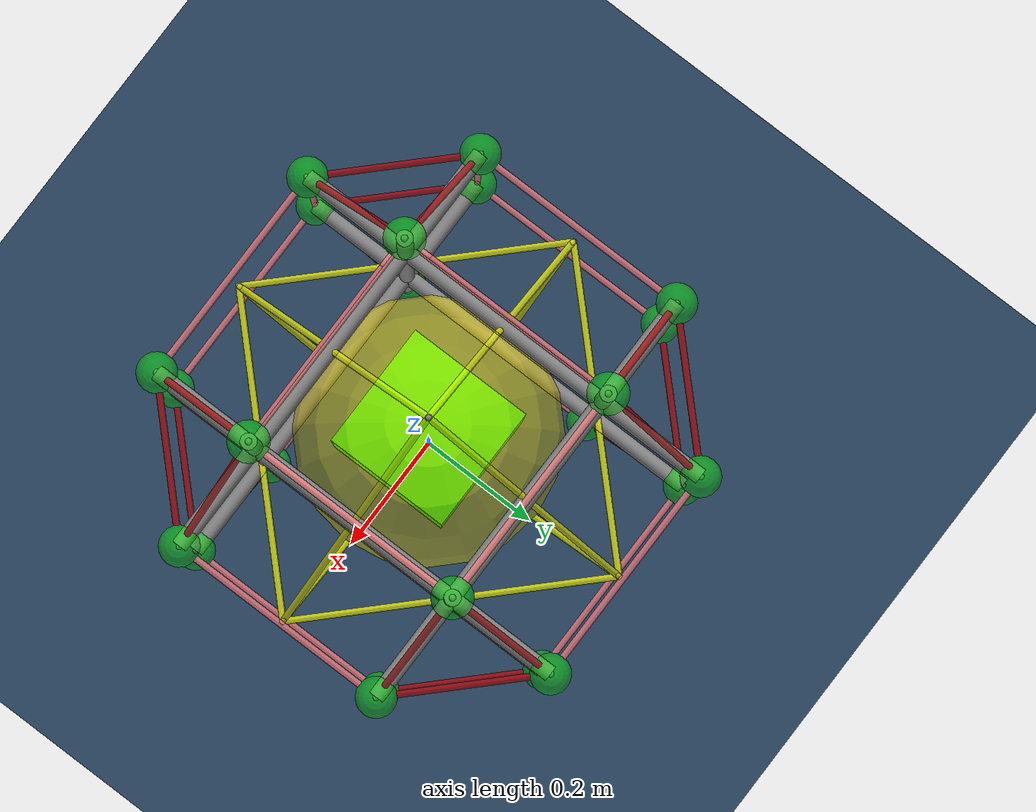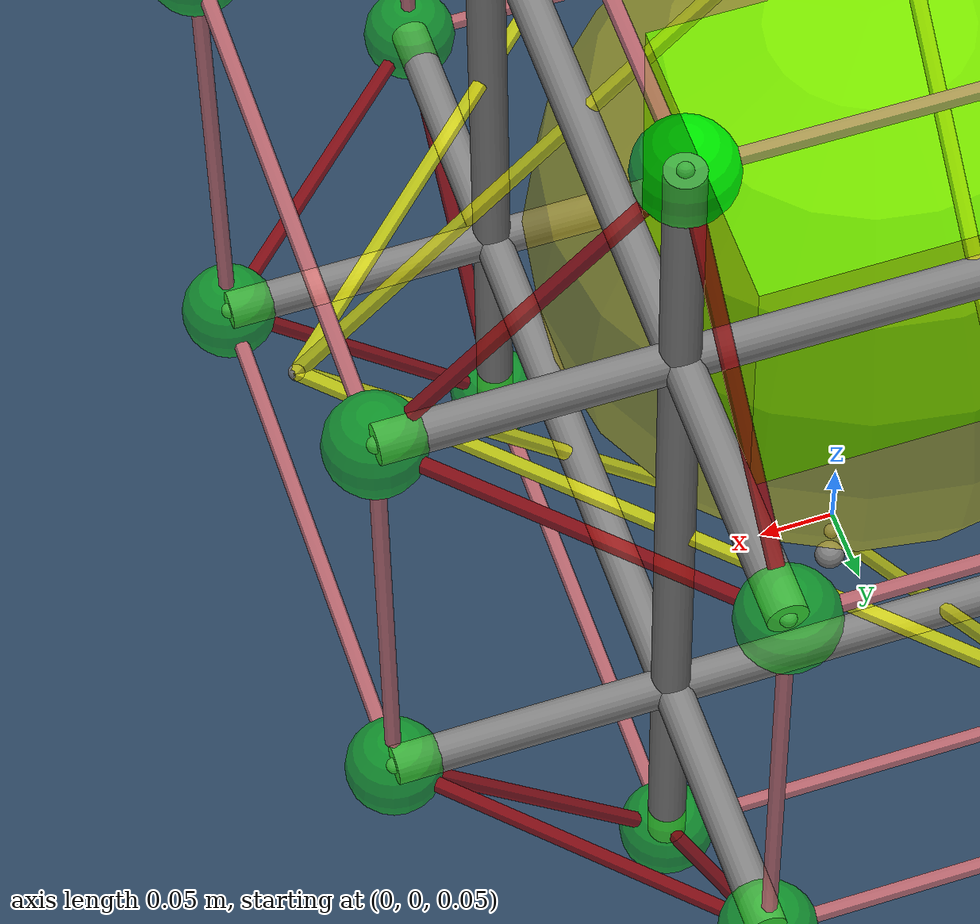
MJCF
<?xml version='1.0' encoding='utf-8'?>
<mujoco model="TT12_environment">
  <compiler autolimits="true" coordinate="local" angle="degree" inertiafromgeom="true" />
  <option timestep="1e-05" gravity="0 0 -10" integrator="Euler">
    <flag override="disable" energy="enable" />
  </option>
  <visual>
    <headlight ambient="0.59999999999999998 0.59999999999999998 0.59999999999999998" diffuse="0.29999999999999999 0.29999999999999999 0.29999999999999999" specular="0.10000000000000001 0.10000000000000001 0.10000000000000001" />
  </visual>
  <default>
    <default class="/">
      <joint type="hinge" damping="0" />
      <geom type="capsule" />
      <site type="sphere" size="0.01" />
      <tendon limited="true" range="0 10" width="0.0050000000000000001" rgba="1 0 0 1" damping="10" />
    </default>
    <default class="tt_model_0/">
      <tendon limited="true" range="0 10" width="0.0050000000000000001" rgba="1 0 0 1" damping="10" />
    </default>
    <default class="tt_model_0/rod0_1/" />
    <default class="tt_model_0/rod2_3/" />
    <default class="tt_model_0/rod4_5/" />
    <default class="tt_model_0/rod6_7/" />
    <default class="tt_model_0/rod8_9/" />
    <default class="tt_model_0/rod10_11/" />
    <default class="tt_model_0/rod12_13/" />
    <default class="tt_model_0/rod14_15/" />
    <default class="tt_model_0/rod16_17/" />
    <default class="tt_model_0/rod18_19/" />
    <default class="tt_model_0/rod20_21/" />
    <default class="tt_model_0/rod22_23/" />
    <default class="tt_model_0/middle_platform/" />
  </default>
  <asset>
    <texture name="skybox" type="skybox" builtin="gradient" rgb1="0.29999999999999999 0.5 0.69999999999999996" rgb2="0 0 0" width="512" height="3072" />
    <texture name="2d" type="2d" builtin="checker" rgb1="0.20000000000000001 0.29999999999999999 0.40000000000000002" rgb2="0.10000000000000001 0.20000000000000001 0.29999999999999999" width="300" height="300" />
    <material name="grid" class="/" texture="2d" texrepeat="5 5" reflectance="0.20000000000000001" />
  </asset>
  <worldbody>
    <geom name="floor" class="/" type="plane" condim="6" priority="1" size="0 0 0.125" material="grid" friction="0.5 0.0050000000000000001 0.0001" solref="-5773.1000000000004 -68.760000000000005" solimp="0.26900000000000002 0.070999999999999994 0.065000000000000002 0.5 2" pos="0 0 0" />
    <light name="light_-2" class="/" pos="-2 -1 3" dir="2 1 -2" />
    <light name="light_2" class="/" pos="2 -1 3" dir="-2 1 -2" />
    <site name="world_site" class="/" pos="0 0 0" />
    <site name="tt_model_0/middle_site_0_1" class="tt_model_0/" rgba="0 0 0 0" pos="0.17499999999999999 0.17499999999999999 0.38" />
    <body pos="0.17499999999999999 0.17499999999999999 0.38" name="tt_model_0/rod0_1/">
      <freejoint name="tt_model_0/rod0_1/" />
      <geom name="tt_model_0/rod0_1/geom0_1" class="tt_model_0/rod0_1/" type="cylinder" size="0.012" mass="0.022499999999999999" fromto="0 0 0.34999999999999998 0 0 -0.34999999999999998" />
      <site name="tt_model_0/rod0_1/node_0" class="tt_model_0/rod0_1/" pos="0 0 0.34999999999999998" />
      <site name="tt_model_0/rod0_1/node_1" class="tt_model_0/rod0_1/" pos="0 0 -0.34999999999999998" />
      <site name="tt_model_0/rod0_1/node_24" class="tt_model_0/rod0_1/" pos="0 0 0" />
      <geom name="tt_model_0/rod0_1/geom_edge_0" class="tt_model_0/rod0_1/" type="sphere" condim="6" size="0.029999999999999999" rgba="0 0.90000000000000002 0 0.5" mass="0.011299999999999999" pos="0 0 0.34999999999999998" />
      <geom name="tt_model_0/rod0_1/geom_edge_1" class="tt_model_0/rod0_1/" type="sphere" condim="6" size="0.029999999999999999" rgba="0 0.90000000000000002 0 0.5" mass="0.011299999999999999" pos="0 0 -0.34999999999999998" />
    </body>
    <site name="tt_model_0/middle_site_2_3" class="tt_model_0/" rgba="0 0 0 0" pos="-0.17499999999999999 0.17499999999999999 0.38" />
    <body pos="-0.17499999999999999 0.17499999999999999 0.38" name="tt_model_0/rod2_3/">
      <freejoint name="tt_model_0/rod2_3/" />
      <geom name="tt_model_0/rod2_3/geom2_3" class="tt_model_0/rod2_3/" type="cylinder" size="0.012" mass="0.022499999999999999" fromto="0 0 0.34999999999999998 0 0 -0.34999999999999998" />
      <site name="tt_model_0/rod2_3/node_2" class="tt_model_0/rod2_3/" pos="0 0 0.34999999999999998" />
      <site name="tt_model_0/rod2_3/node_3" class="tt_model_0/rod2_3/" pos="0 0 -0.34999999999999998" />
      <site name="tt_model_0/rod2_3/node_25" class="tt_model_0/rod2_3/" pos="0 0 0" />
      <geom name="tt_model_0/rod2_3/geom_edge_2" class="tt_model_0/rod2_3/" type="sphere" condim="6" size="0.029999999999999999" rgba="0 0.90000000000000002 0 0.5" mass="0.011299999999999999" pos="0 0 0.34999999999999998" />
      <geom name="tt_model_0/rod2_3/geom_edge_3" class="tt_model_0/rod2_3/" type="sphere" condim="6" size="0.029999999999999999" rgba="0 0.90000000000000002 0 0.5" mass="0.011299999999999999" pos="0 0 -0.34999999999999998" />
    </body>
    <site name="tt_model_0/middle_site_4_5" class="tt_model_0/" rgba="0 0 0 0" pos="-0.17499999999999999 -0.17499999999999999 0.38" />
    <body pos="-0.17499999999999999 -0.17499999999999999 0.38" name="tt_model_0/rod4_5/">
      <freejoint name="tt_model_0/rod4_5/" />
      <geom name="tt_model_0/rod4_5/geom4_5" class="tt_model_0/rod4_5/" type="cylinder" size="0.012" mass="0.022499999999999999" fromto="0 0 0.34999999999999998 0 0 -0.34999999999999998" />
      <site name="tt_model_0/rod4_5/node_4" class="tt_model_0/rod4_5/" pos="0 0 0.34999999999999998" />
      <site name="tt_model_0/rod4_5/node_5" class="tt_model_0/rod4_5/" pos="0 0 -0.34999999999999998" />
      <site name="tt_model_0/rod4_5/node_26" class="tt_model_0/rod4_5/" pos="0 0 0" />
      <geom name="tt_model_0/rod4_5/geom_edge_4" class="tt_model_0/rod4_5/" type="sphere" condim="6" size="0.029999999999999999" rgba="0 0.90000000000000002 0 0.5" mass="0.011299999999999999" pos="0 0 0.34999999999999998" />
      <geom name="tt_model_0/rod4_5/geom_edge_5" class="tt_model_0/rod4_5/" type="sphere" condim="6" size="0.029999999999999999" rgba="0 0.90000000000000002 0 0.5" mass="0.011299999999999999" pos="0 0 -0.34999999999999998" />
    </body>
    <site name="tt_model_0/middle_site_6_7" class="tt_model_0/" rgba="0 0 0 0" pos="0.17499999999999999 -0.17499999999999999 0.38" />
    <body pos="0.17499999999999999 -0.17499999999999999 0.38" name="tt_model_0/rod6_7/">
      <freejoint name="tt_model_0/rod6_7/" />
      <geom name="tt_model_0/rod6_7/geom6_7" class="tt_model_0/rod6_7/" type="cylinder" size="0.012" mass="0.022499999999999999" fromto="0 0 0.34999999999999998 0 0 -0.34999999999999998" />
      <site name="tt_model_0/rod6_7/node_6" class="tt_model_0/rod6_7/" pos="0 0 0.34999999999999998" />
      <site name="tt_model_0/rod6_7/node_7" class="tt_model_0/rod6_7/" pos="0 0 -0.34999999999999998" />
      <site name="tt_model_0/rod6_7/node_27" class="tt_model_0/rod6_7/" pos="0 0 0" />
      <geom name="tt_model_0/rod6_7/geom_edge_6" class="tt_model_0/rod6_7/" type="sphere" condim="6" size="0.029999999999999999" rgba="0 0.90000000000000002 0 0.5" mass="0.011299999999999999" pos="0 0 0.34999999999999998" />
      <geom name="tt_model_0/rod6_7/geom_edge_7" class="tt_model_0/rod6_7/" type="sphere" condim="6" size="0.029999999999999999" rgba="0 0.90000000000000002 0 0.5" mass="0.011299999999999999" pos="0 0 -0.34999999999999998" />
    </body>
    <site name="tt_model_0/middle_site_8_9" class="tt_model_0/" rgba="0 0 0 0" pos="0.17499999999999999 0 0.55499999999999994" />
    <body pos="0.17499999999999999 0 0.55499999999999994" name="tt_model_0/rod8_9/">
      <freejoint name="tt_model_0/rod8_9/" />
      <geom name="tt_model_0/rod8_9/geom8_9" class="tt_model_0/rod8_9/" type="cylinder" size="0.012" mass="0.022499999999999999" fromto="0 0.34999999999999998 0 0 -0.34999999999999998 0" />
      <site name="tt_model_0/rod8_9/node_8" class="tt_model_0/rod8_9/" pos="0 0.34999999999999998 0" />
      <site name="tt_model_0/rod8_9/node_9" class="tt_model_0/rod8_9/" pos="0 -0.34999999999999998 0" />
      <site name="tt_model_0/rod8_9/node_28" class="tt_model_0/rod8_9/" pos="0 0 0" />
      <geom name="tt_model_0/rod8_9/geom_edge_8" class="tt_model_0/rod8_9/" type="sphere" condim="6" size="0.029999999999999999" rgba="0 0.90000000000000002 0 0.5" mass="0.011299999999999999" pos="0 0.34999999999999998 0" />
      <geom name="tt_model_0/rod8_9/geom_edge_9" class="tt_model_0/rod8_9/" type="sphere" condim="6" size="0.029999999999999999" rgba="0 0.90000000000000002 0 0.5" mass="0.011299999999999999" pos="0 -0.34999999999999998 0" />
    </body>
    <site name="tt_model_0/middle_site_10_11" class="tt_model_0/" rgba="0 0 0 0" pos="0.17499999999999999 0 0.20500000000000002" />
    <body pos="0.17499999999999999 0 0.20500000000000002" name="tt_model_0/rod10_11/">
      <freejoint name="tt_model_0/rod10_11/" />
      <geom name="tt_model_0/rod10_11/geom10_11" class="tt_model_0/rod10_11/" type="cylinder" size="0.012" mass="0.022499999999999999" fromto="0 0.34999999999999998 0 0 -0.34999999999999998 0" />
      <site name="tt_model_0/rod10_11/node_10" class="tt_model_0/rod10_11/" pos="0 0.34999999999999998 0" />
      <site name="tt_model_0/rod10_11/node_11" class="tt_model_0/rod10_11/" pos="0 -0.34999999999999998 0" />
      <site name="tt_model_0/rod10_11/node_29" class="tt_model_0/rod10_11/" pos="0 0 0" />
      <geom name="tt_model_0/rod10_11/geom_edge_10" class="tt_model_0/rod10_11/" type="sphere" condim="6" size="0.029999999999999999" rgba="0 0.90000000000000002 0 0.5" mass="0.011299999999999999" pos="0 0.34999999999999998 0" />
      <geom name="tt_model_0/rod10_11/geom_edge_11" class="tt_model_0/rod10_11/" type="sphere" condim="6" size="0.029999999999999999" rgba="0 0.90000000000000002 0 0.5" mass="0.011299999999999999" pos="0 -0.34999999999999998 0" />
    </body>
    <site name="tt_model_0/middle_site_12_13" class="tt_model_0/" rgba="0 0 0 0" pos="-0.17499999999999999 0 0.20500000000000002" />
    <body pos="-0.17499999999999999 0 0.20500000000000002" name="tt_model_0/rod12_13/">
      <freejoint name="tt_model_0/rod12_13/" />
      <geom name="tt_model_0/rod12_13/geom12_13" class="tt_model_0/rod12_13/" type="cylinder" size="0.012" mass="0.022499999999999999" fromto="0 0.34999999999999998 0 0 -0.34999999999999998 0" />
      <site name="tt_model_0/rod12_13/node_12" class="tt_model_0/rod12_13/" pos="0 0.34999999999999998 0" />
      <site name="tt_model_0/rod12_13/node_13" class="tt_model_0/rod12_13/" pos="0 -0.34999999999999998 0" />
      <site name="tt_model_0/rod12_13/node_30" class="tt_model_0/rod12_13/" pos="0 0 0" />
      <geom name="tt_model_0/rod12_13/geom_edge_12" class="tt_model_0/rod12_13/" type="sphere" condim="6" size="0.029999999999999999" rgba="0 0.90000000000000002 0 0.5" mass="0.011299999999999999" pos="0 0.34999999999999998 0" />
      <geom name="tt_model_0/rod12_13/geom_edge_13" class="tt_model_0/rod12_13/" type="sphere" condim="6" size="0.029999999999999999" rgba="0 0.90000000000000002 0 0.5" mass="0.011299999999999999" pos="0 -0.34999999999999998 0" />
    </body>
    <site name="tt_model_0/middle_site_14_15" class="tt_model_0/" rgba="0 0 0 0" pos="-0.17499999999999999 0 0.55499999999999994" />
    <body pos="-0.17499999999999999 0 0.55499999999999994" name="tt_model_0/rod14_15/">
      <freejoint name="tt_model_0/rod14_15/" />
      <geom name="tt_model_0/rod14_15/geom14_15" class="tt_model_0/rod14_15/" type="cylinder" size="0.012" mass="0.022499999999999999" fromto="0 0.34999999999999998 0 0 -0.34999999999999998 0" />
      <site name="tt_model_0/rod14_15/node_14" class="tt_model_0/rod14_15/" pos="0 0.34999999999999998 0" />
      <site name="tt_model_0/rod14_15/node_15" class="tt_model_0/rod14_15/" pos="0 -0.34999999999999998 0" />
      <site name="tt_model_0/rod14_15/node_31" class="tt_model_0/rod14_15/" pos="0 0 0" />
      <geom name="tt_model_0/rod14_15/geom_edge_14" class="tt_model_0/rod14_15/" type="sphere" condim="6" size="0.029999999999999999" rgba="0 0.90000000000000002 0 0.5" mass="0.011299999999999999" pos="0 0.34999999999999998 0" />
      <geom name="tt_model_0/rod14_15/geom_edge_15" class="tt_model_0/rod14_15/" type="sphere" condim="6" size="0.029999999999999999" rgba="0 0.90000000000000002 0 0.5" mass="0.011299999999999999" pos="0 -0.34999999999999998 0" />
    </body>
    <site name="tt_model_0/middle_site_16_17" class="tt_model_0/" rgba="0 0 0 0" pos="0 0.17499999999999999 0.55499999999999994" />
    <body pos="0 0.17499999999999999 0.55499999999999994" name="tt_model_0/rod16_17/">
      <freejoint name="tt_model_0/rod16_17/" />
      <geom name="tt_model_0/rod16_17/geom16_17" class="tt_model_0/rod16_17/" type="cylinder" size="0.012" mass="0.022499999999999999" fromto="0.34999999999999998 0 0 -0.34999999999999998 0 0" />
      <site name="tt_model_0/rod16_17/node_16" class="tt_model_0/rod16_17/" pos="0.34999999999999998 0 0" />
      <site name="tt_model_0/rod16_17/node_17" class="tt_model_0/rod16_17/" pos="-0.34999999999999998 0 0" />
      <site name="tt_model_0/rod16_17/node_32" class="tt_model_0/rod16_17/" pos="0 0 0" />
      <geom name="tt_model_0/rod16_17/geom_edge_16" class="tt_model_0/rod16_17/" type="sphere" condim="6" size="0.029999999999999999" rgba="0 0.90000000000000002 0 0.5" mass="0.011299999999999999" pos="0.34999999999999998 0 0" />
      <geom name="tt_model_0/rod16_17/geom_edge_17" class="tt_model_0/rod16_17/" type="sphere" condim="6" size="0.029999999999999999" rgba="0 0.90000000000000002 0 0.5" mass="0.011299999999999999" pos="-0.34999999999999998 0 0" />
    </body>
    <site name="tt_model_0/middle_site_18_19" class="tt_model_0/" rgba="0 0 0 0" pos="0 -0.17499999999999999 0.55499999999999994" />
    <body pos="0 -0.17499999999999999 0.55499999999999994" name="tt_model_0/rod18_19/">
      <freejoint name="tt_model_0/rod18_19/" />
      <geom name="tt_model_0/rod18_19/geom18_19" class="tt_model_0/rod18_19/" type="cylinder" size="0.012" mass="0.022499999999999999" fromto="0.34999999999999998 0 0 -0.34999999999999998 0 0" />
      <site name="tt_model_0/rod18_19/node_18" class="tt_model_0/rod18_19/" pos="0.34999999999999998 0 0" />
      <site name="tt_model_0/rod18_19/node_19" class="tt_model_0/rod18_19/" pos="-0.34999999999999998 0 0" />
      <site name="tt_model_0/rod18_19/node_33" class="tt_model_0/rod18_19/" pos="0 0 0" />
      <geom name="tt_model_0/rod18_19/geom_edge_18" class="tt_model_0/rod18_19/" type="sphere" condim="6" size="0.029999999999999999" rgba="0 0.90000000000000002 0 0.5" mass="0.011299999999999999" pos="0.34999999999999998 0 0" />
      <geom name="tt_model_0/rod18_19/geom_edge_19" class="tt_model_0/rod18_19/" type="sphere" condim="6" size="0.029999999999999999" rgba="0 0.90000000000000002 0 0.5" mass="0.011299999999999999" pos="-0.34999999999999998 0 0" />
    </body>
    <site name="tt_model_0/middle_site_20_21" class="tt_model_0/" rgba="0 0 0 0" pos="0 -0.17499999999999999 0.20500000000000002" />
    <body pos="0 -0.17499999999999999 0.20500000000000002" name="tt_model_0/rod20_21/">
      <freejoint name="tt_model_0/rod20_21/" />
      <geom name="tt_model_0/rod20_21/geom20_21" class="tt_model_0/rod20_21/" type="cylinder" size="0.012" mass="0.022499999999999999" fromto="0.34999999999999998 0 0 -0.34999999999999998 0 0" />
      <site name="tt_model_0/rod20_21/node_20" class="tt_model_0/rod20_21/" pos="0.34999999999999998 0 0" />
      <site name="tt_model_0/rod20_21/node_21" class="tt_model_0/rod20_21/" pos="-0.34999999999999998 0 0" />
      <site name="tt_model_0/rod20_21/node_34" class="tt_model_0/rod20_21/" pos="0 0 0" />
      <geom name="tt_model_0/rod20_21/geom_edge_20" class="tt_model_0/rod20_21/" type="sphere" condim="6" size="0.029999999999999999" rgba="0 0.90000000000000002 0 0.5" mass="0.011299999999999999" pos="0.34999999999999998 0 0" />
      <geom name="tt_model_0/rod20_21/geom_edge_21" class="tt_model_0/rod20_21/" type="sphere" condim="6" size="0.029999999999999999" rgba="0 0.90000000000000002 0 0.5" mass="0.011299999999999999" pos="-0.34999999999999998 0 0" />
    </body>
    <site name="tt_model_0/middle_site_22_23" class="tt_model_0/" rgba="0 0 0 0" pos="0 0.17499999999999999 0.20500000000000002" />
    <body pos="0 0.17499999999999999 0.20500000000000002" name="tt_model_0/rod22_23/">
      <freejoint name="tt_model_0/rod22_23/" />
      <geom name="tt_model_0/rod22_23/geom22_23" class="tt_model_0/rod22_23/" type="cylinder" size="0.012" mass="0.022499999999999999" fromto="0.34999999999999998 0 0 -0.34999999999999998 0 0" />
      <site name="tt_model_0/rod22_23/node_22" class="tt_model_0/rod22_23/" pos="0.34999999999999998 0 0" />
      <site name="tt_model_0/rod22_23/node_23" class="tt_model_0/rod22_23/" pos="-0.34999999999999998 0 0" />
      <site name="tt_model_0/rod22_23/node_35" class="tt_model_0/rod22_23/" pos="0 0 0" />
      <geom name="tt_model_0/rod22_23/geom_edge_22" class="tt_model_0/rod22_23/" type="sphere" condim="6" size="0.029999999999999999" rgba="0 0.90000000000000002 0 0.5" mass="0.011299999999999999" pos="0.34999999999999998 0 0" />
      <geom name="tt_model_0/rod22_23/geom_edge_23" class="tt_model_0/rod22_23/" type="sphere" condim="6" size="0.029999999999999999" rgba="0 0.90000000000000002 0 0.5" mass="0.011299999999999999" pos="-0.34999999999999998 0 0" />
    </body>
    <site name="tt_model_0/middle_element_site" class="tt_model_0/" rgba="0 0 0 0" pos="0 0 0.38" />
    <body pos="0 0 0.38" name="tt_model_0/middle_platform/">
      <freejoint name="tt_model_0/middle_platform/" />
      <inertial pos="0 0 0" mass="0.69999999999999996" diaginertia="0.02 0.02 0.02" />
      <site name="tt_model_0/middle_platform/node_39" class="tt_model_0/middle_platform/" pos="0 0.34999999999999998 0" />
      <site name="tt_model_0/middle_platform/node_40" class="tt_model_0/middle_platform/" pos="0 -0.34999999999999998 0" />
      <site name="tt_model_0/middle_platform/node_37" class="tt_model_0/middle_platform/" pos="0.34999999999999998 0 0" />
      <site name="tt_model_0/middle_platform/node_41" class="tt_model_0/middle_platform/" pos="0 0 0.34999999999999998" />
      <site name="tt_model_0/middle_platform/node_38" class="tt_model_0/middle_platform/" pos="-0.34999999999999998 0 0" />
      <site name="tt_model_0/middle_platform/node_42" class="tt_model_0/middle_platform/" pos="0 0 -0.34999999999999998" />
      <site name="tt_model_0/middle_platform/outside_site" class="tt_model_0/middle_platform/" rgba="1 0.90000000000000002 0 0.5" size="0.20000000000000001" pos="0 0 0" />
      <body name="tt_model_0/middle_platform/inside_ball" pos="0 0 0">
        <inertial pos="0 0 0" mass="6.5999999999999996" diaginertia="0.12 0.12 0.12" />
        <joint name="tt_model_0/middle_platform/x_control" class="tt_model_0/middle_platform/" type="hinge" axis="1 0 0" />
        <joint name="tt_model_0/middle_platform/y_control" class="tt_model_0/middle_platform/" type="hinge" axis="0 1 0" />
        <joint name="tt_model_0/middle_platform/z_control" class="tt_model_0/middle_platform/" type="hinge" axis="0 0 1" />
        <site name="tt_model_0/middle_platform/inside_site" class="tt_model_0/middle_platform/" type="box" rgba="0 0.90000000000000002 0 1" size="0.10000000000000001 0.10000000000000001 0.10000000000000001" pos="0 0 0" />
      </body>
    </body>
  </worldbody>
  <contact>
    <exclude name="tt_model_0/exclude_rod0_1_rod2_3" body1="tt_model_0/rod0_1/" body2="tt_model_0/rod2_3/" />
    <exclude name="tt_model_0/exclude_rod0_1_rod4_5" body1="tt_model_0/rod0_1/" body2="tt_model_0/rod4_5/" />
    <exclude name="tt_model_0/exclude_rod0_1_rod6_7" body1="tt_model_0/rod0_1/" body2="tt_model_0/rod6_7/" />
    <exclude name="tt_model_0/exclude_rod0_1_rod8_9" body1="tt_model_0/rod0_1/" body2="tt_model_0/rod8_9/" />
    <exclude name="tt_model_0/exclude_rod0_1_rod10_11" body1="tt_model_0/rod0_1/" body2="tt_model_0/rod10_11/" />
    <exclude name="tt_model_0/exclude_rod0_1_rod12_13" body1="tt_model_0/rod0_1/" body2="tt_model_0/rod12_13/" />
    <exclude name="tt_model_0/exclude_rod0_1_rod14_15" body1="tt_model_0/rod0_1/" body2="tt_model_0/rod14_15/" />
    <exclude name="tt_model_0/exclude_rod0_1_rod16_17" body1="tt_model_0/rod0_1/" body2="tt_model_0/rod16_17/" />
    <exclude name="tt_model_0/exclude_rod0_1_rod18_19" body1="tt_model_0/rod0_1/" body2="tt_model_0/rod18_19/" />
    <exclude name="tt_model_0/exclude_rod0_1_rod20_21" body1="tt_model_0/rod0_1/" body2="tt_model_0/rod20_21/" />
    <exclude name="tt_model_0/exclude_rod0_1_rod22_23" body1="tt_model_0/rod0_1/" body2="tt_model_0/rod22_23/" />
    <exclude name="tt_model_0/exclude_rod2_3_rod4_5" body1="tt_model_0/rod2_3/" body2="tt_model_0/rod4_5/" />
    <exclude name="tt_model_0/exclude_rod2_3_rod6_7" body1="tt_model_0/rod2_3/" body2="tt_model_0/rod6_7/" />
    <exclude name="tt_model_0/exclude_rod2_3_rod8_9" body1="tt_model_0/rod2_3/" body2="tt_model_0/rod8_9/" />
    <exclude name="tt_model_0/exclude_rod2_3_rod10_11" body1="tt_model_0/rod2_3/" body2="tt_model_0/rod10_11/" />
    <exclude name="tt_model_0/exclude_rod2_3_rod12_13" body1="tt_model_0/rod2_3/" body2="tt_model_0/rod12_13/" />
    <exclude name="tt_model_0/exclude_rod2_3_rod14_15" body1="tt_model_0/rod2_3/" body2="tt_model_0/rod14_15/" />
    <exclude name="tt_model_0/exclude_rod2_3_rod16_17" body1="tt_model_0/rod2_3/" body2="tt_model_0/rod16_17/" />
    <exclude name="tt_model_0/exclude_rod2_3_rod18_19" body1="tt_model_0/rod2_3/" body2="tt_model_0/rod18_19/" />
    <exclude name="tt_model_0/exclude_rod2_3_rod20_21" body1="tt_model_0/rod2_3/" body2="tt_model_0/rod20_21/" />
    <exclude name="tt_model_0/exclude_rod2_3_rod22_23" body1="tt_model_0/rod2_3/" body2="tt_model_0/rod22_23/" />
    <exclude name="tt_model_0/exclude_rod4_5_rod6_7" body1="tt_model_0/rod4_5/" body2="tt_model_0/rod6_7/" />
    <exclude name="tt_model_0/exclude_rod4_5_rod8_9" body1="tt_model_0/rod4_5/" body2="tt_model_0/rod8_9/" />
    <exclude name="tt_model_0/exclude_rod4_5_rod10_11" body1="tt_model_0/rod4_5/" body2="tt_model_0/rod10_11/" />
    <exclude name="tt_model_0/exclude_rod4_5_rod12_13" body1="tt_model_0/rod4_5/" body2="tt_model_0/rod12_13/" />
    <exclude name="tt_model_0/exclude_rod4_5_rod14_15" body1="tt_model_0/rod4_5/" body2="tt_model_0/rod14_15/" />
    <exclude name="tt_model_0/exclude_rod4_5_rod16_17" body1="tt_model_0/rod4_5/" body2="tt_model_0/rod16_17/" />
    <exclude name="tt_model_0/exclude_rod4_5_rod18_19" body1="tt_model_0/rod4_5/" body2="tt_model_0/rod18_19/" />
    <exclude name="tt_model_0/exclude_rod4_5_rod20_21" body1="tt_model_0/rod4_5/" body2="tt_model_0/rod20_21/" />
    <exclude name="tt_model_0/exclude_rod4_5_rod22_23" body1="tt_model_0/rod4_5/" body2="tt_model_0/rod22_23/" />
    <exclude name="tt_model_0/exclude_rod6_7_rod8_9" body1="tt_model_0/rod6_7/" body2="tt_model_0/rod8_9/" />
    <exclude name="tt_model_0/exclude_rod6_7_rod10_11" body1="tt_model_0/rod6_7/" body2="tt_model_0/rod10_11/" />
    <exclude name="tt_model_0/exclude_rod6_7_rod12_13" body1="tt_model_0/rod6_7/" body2="tt_model_0/rod12_13/" />
    <exclude name="tt_model_0/exclude_rod6_7_rod14_15" body1="tt_model_0/rod6_7/" body2="tt_model_0/rod14_15/" />
    <exclude name="tt_model_0/exclude_rod6_7_rod16_17" body1="tt_model_0/rod6_7/" body2="tt_model_0/rod16_17/" />
    <exclude name="tt_model_0/exclude_rod6_7_rod18_19" body1="tt_model_0/rod6_7/" body2="tt_model_0/rod18_19/" />
    <exclude name="tt_model_0/exclude_rod6_7_rod20_21" body1="tt_model_0/rod6_7/" body2="tt_model_0/rod20_21/" />
    <exclude name="tt_model_0/exclude_rod6_7_rod22_23" body1="tt_model_0/rod6_7/" body2="tt_model_0/rod22_23/" />
    <exclude name="tt_model_0/exclude_rod8_9_rod10_11" body1="tt_model_0/rod8_9/" body2="tt_model_0/rod10_11/" />
    <exclude name="tt_model_0/exclude_rod8_9_rod12_13" body1="tt_model_0/rod8_9/" body2="tt_model_0/rod12_13/" />
    <exclude name="tt_model_0/exclude_rod8_9_rod14_15" body1="tt_model_0/rod8_9/" body2="tt_model_0/rod14_15/" />
    <exclude name="tt_model_0/exclude_rod8_9_rod16_17" body1="tt_model_0/rod8_9/" body2="tt_model_0/rod16_17/" />
    <exclude name="tt_model_0/exclude_rod8_9_rod18_19" body1="tt_model_0/rod8_9/" body2="tt_model_0/rod18_19/" />
    <exclude name="tt_model_0/exclude_rod8_9_rod20_21" body1="tt_model_0/rod8_9/" body2="tt_model_0/rod20_21/" />
    <exclude name="tt_model_0/exclude_rod8_9_rod22_23" body1="tt_model_0/rod8_9/" body2="tt_model_0/rod22_23/" />
    <exclude name="tt_model_0/exclude_rod10_11_rod12_13" body1="tt_model_0/rod10_11/" body2="tt_model_0/rod12_13/" />
    <exclude name="tt_model_0/exclude_rod10_11_rod14_15" body1="tt_model_0/rod10_11/" body2="tt_model_0/rod14_15/" />
    <exclude name="tt_model_0/exclude_rod10_11_rod16_17" body1="tt_model_0/rod10_11/" body2="tt_model_0/rod16_17/" />
    <exclude name="tt_model_0/exclude_rod10_11_rod18_19" body1="tt_model_0/rod10_11/" body2="tt_model_0/rod18_19/" />
    <exclude name="tt_model_0/exclude_rod10_11_rod20_21" body1="tt_model_0/rod10_11/" body2="tt_model_0/rod20_21/" />
    <exclude name="tt_model_0/exclude_rod10_11_rod22_23" body1="tt_model_0/rod10_11/" body2="tt_model_0/rod22_23/" />
    <exclude name="tt_model_0/exclude_rod12_13_rod14_15" body1="tt_model_0/rod12_13/" body2="tt_model_0/rod14_15/" />
    <exclude name="tt_model_0/exclude_rod12_13_rod16_17" body1="tt_model_0/rod12_13/" body2="tt_model_0/rod16_17/" />
    <exclude name="tt_model_0/exclude_rod12_13_rod18_19" body1="tt_model_0/rod12_13/" body2="tt_model_0/rod18_19/" />
    <exclude name="tt_model_0/exclude_rod12_13_rod20_21" body1="tt_model_0/rod12_13/" body2="tt_model_0/rod20_21/" />
    <exclude name="tt_model_0/exclude_rod12_13_rod22_23" body1="tt_model_0/rod12_13/" body2="tt_model_0/rod22_23/" />
    <exclude name="tt_model_0/exclude_rod14_15_rod16_17" body1="tt_model_0/rod14_15/" body2="tt_model_0/rod16_17/" />
    <exclude name="tt_model_0/exclude_rod14_15_rod18_19" body1="tt_model_0/rod14_15/" body2="tt_model_0/rod18_19/" />
    <exclude name="tt_model_0/exclude_rod14_15_rod20_21" body1="tt_model_0/rod14_15/" body2="tt_model_0/rod20_21/" />
    <exclude name="tt_model_0/exclude_rod14_15_rod22_23" body1="tt_model_0/rod14_15/" body2="tt_model_0/rod22_23/" />
    <exclude name="tt_model_0/exclude_rod16_17_rod18_19" body1="tt_model_0/rod16_17/" body2="tt_model_0/rod18_19/" />
    <exclude name="tt_model_0/exclude_rod16_17_rod20_21" body1="tt_model_0/rod16_17/" body2="tt_model_0/rod20_21/" />
    <exclude name="tt_model_0/exclude_rod16_17_rod22_23" body1="tt_model_0/rod16_17/" body2="tt_model_0/rod22_23/" />
    <exclude name="tt_model_0/exclude_rod18_19_rod20_21" body1="tt_model_0/rod18_19/" body2="tt_model_0/rod20_21/" />
    <exclude name="tt_model_0/exclude_rod18_19_rod22_23" body1="tt_model_0/rod18_19/" body2="tt_model_0/rod22_23/" />
    <exclude name="tt_model_0/exclude_rod20_21_rod22_23" body1="tt_model_0/rod20_21/" body2="tt_model_0/rod22_23/" />
  </contact>
  <tendon>
    <spatial name="tt_model_0/td0_2" class="tt_model_0/" rgba="1 0.5 0.5 0.69999999999999996" springlength="0.22029831387808038" stiffness="771">
      <site site="tt_model_0/rod0_1/node_0" />
      <site site="tt_model_0/rod2_3/node_2" />
    </spatial>
    <spatial name="tt_model_0/td2_4" class="tt_model_0/" rgba="1 0.5 0.5 0.69999999999999996" springlength="0.22029831387808038" stiffness="771">
      <site site="tt_model_0/rod2_3/node_2" />
      <site site="tt_model_0/rod4_5/node_4" />
    </spatial>
    <spatial name="tt_model_0/td4_6" class="tt_model_0/" rgba="1 0.5 0.5 0.69999999999999996" springlength="0.22029831387808038" stiffness="771">
      <site site="tt_model_0/rod4_5/node_4" />
      <site site="tt_model_0/rod6_7/node_6" />
    </spatial>
    <spatial name="tt_model_0/td6_0" class="tt_model_0/" rgba="1 0.5 0.5 0.69999999999999996" springlength="0.22029831387808038" stiffness="771">
      <site site="tt_model_0/rod6_7/node_6" />
      <site site="tt_model_0/rod0_1/node_0" />
    </spatial>
    <spatial name="tt_model_0/td1_3" class="tt_model_0/" rgba="1 0.5 0.5 0.69999999999999996" springlength="0.22029831387808038" stiffness="771">
      <site site="tt_model_0/rod0_1/node_1" />
      <site site="tt_model_0/rod2_3/node_3" />
    </spatial>
    <spatial name="tt_model_0/td3_5" class="tt_model_0/" rgba="1 0.5 0.5 0.69999999999999996" springlength="0.22029831387808038" stiffness="771">
      <site site="tt_model_0/rod2_3/node_3" />
      <site site="tt_model_0/rod4_5/node_5" />
    </spatial>
    <spatial name="tt_model_0/td5_7" class="tt_model_0/" rgba="1 0.5 0.5 0.69999999999999996" springlength="0.22029831387808038" stiffness="771">
      <site site="tt_model_0/rod4_5/node_5" />
      <site site="tt_model_0/rod6_7/node_7" />
    </spatial>
    <spatial name="tt_model_0/td7_1" class="tt_model_0/" rgba="1 0.5 0.5 0.69999999999999996" springlength="0.22029831387808038" stiffness="771">
      <site site="tt_model_0/rod6_7/node_7" />
      <site site="tt_model_0/rod0_1/node_1" />
    </spatial>
    <spatial name="tt_model_0/td8_10" class="tt_model_0/" rgba="1 0.5 0.5 0.69999999999999996" springlength="0.22029831387808038" stiffness="771">
      <site site="tt_model_0/rod8_9/node_8" />
      <site site="tt_model_0/rod10_11/node_10" />
    </spatial>
    <spatial name="tt_model_0/td10_12" class="tt_model_0/" rgba="1 0.5 0.5 0.69999999999999996" springlength="0.22029831387808038" stiffness="771">
      <site site="tt_model_0/rod10_11/node_10" />
      <site site="tt_model_0/rod12_13/node_12" />
    </spatial>
    <spatial name="tt_model_0/td12_14" class="tt_model_0/" rgba="1 0.5 0.5 0.69999999999999996" springlength="0.22029831387808038" stiffness="771">
      <site site="tt_model_0/rod12_13/node_12" />
      <site site="tt_model_0/rod14_15/node_14" />
    </spatial>
    <spatial name="tt_model_0/td14_8" class="tt_model_0/" rgba="1 0.5 0.5 0.69999999999999996" springlength="0.22029831387808038" stiffness="771">
      <site site="tt_model_0/rod14_15/node_14" />
      <site site="tt_model_0/rod8_9/node_8" />
    </spatial>
    <spatial name="tt_model_0/td9_11" class="tt_model_0/" rgba="1 0.5 0.5 0.69999999999999996" springlength="0.22029831387808038" stiffness="771">
      <site site="tt_model_0/rod8_9/node_9" />
      <site site="tt_model_0/rod10_11/node_11" />
    </spatial>
    <spatial name="tt_model_0/td11_13" class="tt_model_0/" rgba="1 0.5 0.5 0.69999999999999996" springlength="0.22029831387808038" stiffness="771">
      <site site="tt_model_0/rod10_11/node_11" />
      <site site="tt_model_0/rod12_13/node_13" />
    </spatial>
    <spatial name="tt_model_0/td13_15" class="tt_model_0/" rgba="1 0.5 0.5 0.69999999999999996" springlength="0.22029831387808038" stiffness="771">
      <site site="tt_model_0/rod12_13/node_13" />
      <site site="tt_model_0/rod14_15/node_15" />
    </spatial>
    <spatial name="tt_model_0/td15_9" class="tt_model_0/" rgba="1 0.5 0.5 0.69999999999999996" springlength="0.22029831387808038" stiffness="771">
      <site site="tt_model_0/rod14_15/node_15" />
      <site site="tt_model_0/rod8_9/node_9" />
    </spatial>
    <spatial name="tt_model_0/td16_18" class="tt_model_0/" rgba="1 0.5 0.5 0.69999999999999996" springlength="0.22029831387808038" stiffness="771">
      <site site="tt_model_0/rod16_17/node_16" />
      <site site="tt_model_0/rod18_19/node_18" />
    </spatial>
    <spatial name="tt_model_0/td18_20" class="tt_model_0/" rgba="1 0.5 0.5 0.69999999999999996" springlength="0.22029831387808038" stiffness="771">
      <site site="tt_model_0/rod18_19/node_18" />
      <site site="tt_model_0/rod20_21/node_20" />
    </spatial>
    <spatial name="tt_model_0/td20_22" class="tt_model_0/" rgba="1 0.5 0.5 0.69999999999999996" springlength="0.22029831387808038" stiffness="771">
      <site site="tt_model_0/rod20_21/node_20" />
      <site site="tt_model_0/rod22_23/node_22" />
    </spatial>
    <spatial name="tt_model_0/td22_16" class="tt_model_0/" rgba="1 0.5 0.5 0.69999999999999996" springlength="0.22029831387808038" stiffness="771">
      <site site="tt_model_0/rod22_23/node_22" />
      <site site="tt_model_0/rod16_17/node_16" />
    </spatial>
    <spatial name="tt_model_0/td17_19" class="tt_model_0/" rgba="1 0.5 0.5 0.69999999999999996" springlength="0.22029831387808038" stiffness="771">
      <site site="tt_model_0/rod16_17/node_17" />
      <site site="tt_model_0/rod18_19/node_19" />
    </spatial>
    <spatial name="tt_model_0/td19_21" class="tt_model_0/" rgba="1 0.5 0.5 0.69999999999999996" springlength="0.22029831387808038" stiffness="771">
      <site site="tt_model_0/rod18_19/node_19" />
      <site site="tt_model_0/rod20_21/node_21" />
    </spatial>
    <spatial name="tt_model_0/td21_23" class="tt_model_0/" rgba="1 0.5 0.5 0.69999999999999996" springlength="0.22029831387808038" stiffness="771">
      <site site="tt_model_0/rod20_21/node_21" />
      <site site="tt_model_0/rod22_23/node_23" />
    </spatial>
    <spatial name="tt_model_0/td23_17" class="tt_model_0/" rgba="1 0.5 0.5 0.69999999999999996" springlength="0.22029831387808038" stiffness="771">
      <site site="tt_model_0/rod22_23/node_23" />
      <site site="tt_model_0/rod16_17/node_17" />
    </spatial>
    <spatial name="tt_model_0/td0_16" class="tt_model_0/" rgba="0.69999999999999996 0 0 0.69999999999999996" springlength="0.10248737341529165" stiffness="2000">
      <site site="tt_model_0/rod0_1/node_0" />
      <site site="tt_model_0/rod16_17/node_16" />
    </spatial>
    <spatial name="tt_model_0/td2_17" class="tt_model_0/" rgba="0.69999999999999996 0 0 0.69999999999999996" springlength="0.10248737341529165" stiffness="2000">
      <site site="tt_model_0/rod2_3/node_2" />
      <site site="tt_model_0/rod16_17/node_17" />
    </spatial>
    <spatial name="tt_model_0/td4_19" class="tt_model_0/" rgba="0.69999999999999996 0 0 0.69999999999999996" springlength="0.10248737341529165" stiffness="2000">
      <site site="tt_model_0/rod4_5/node_4" />
      <site site="tt_model_0/rod18_19/node_19" />
    </spatial>
    <spatial name="tt_model_0/td6_18" class="tt_model_0/" rgba="0.69999999999999996 0 0 0.69999999999999996" springlength="0.10248737341529165" stiffness="2000">
      <site site="tt_model_0/rod6_7/node_6" />
      <site site="tt_model_0/rod18_19/node_18" />
    </spatial>
    <spatial name="tt_model_0/td1_22" class="tt_model_0/" rgba="0.69999999999999996 0 0 0.69999999999999996" springlength="0.10248737341529165" stiffness="2000">
      <site site="tt_model_0/rod0_1/node_1" />
      <site site="tt_model_0/rod22_23/node_22" />
    </spatial>
    <spatial name="tt_model_0/td3_23" class="tt_model_0/" rgba="0.69999999999999996 0 0 0.69999999999999996" springlength="0.10248737341529165" stiffness="2000">
      <site site="tt_model_0/rod2_3/node_3" />
      <site site="tt_model_0/rod22_23/node_23" />
    </spatial>
    <spatial name="tt_model_0/td5_21" class="tt_model_0/" rgba="0.69999999999999996 0 0 0.69999999999999996" springlength="0.10248737341529165" stiffness="2000">
      <site site="tt_model_0/rod4_5/node_5" />
      <site site="tt_model_0/rod20_21/node_21" />
    </spatial>
    <spatial name="tt_model_0/td7_20" class="tt_model_0/" rgba="0.69999999999999996 0 0 0.69999999999999996" springlength="0.10248737341529165" stiffness="2000">
      <site site="tt_model_0/rod6_7/node_7" />
      <site site="tt_model_0/rod20_21/node_20" />
    </spatial>
    <spatial name="tt_model_0/td8_0" class="tt_model_0/" rgba="0.69999999999999996 0 0 0.69999999999999996" springlength="0.10248737341529165" stiffness="2000">
      <site site="tt_model_0/rod8_9/node_8" />
      <site site="tt_model_0/rod0_1/node_0" />
    </spatial>
    <spatial name="tt_model_0/td8_16" class="tt_model_0/" rgba="0.69999999999999996 0 0 0.69999999999999996" springlength="0.10248737341529165" stiffness="2000">
      <site site="tt_model_0/rod8_9/node_8" />
      <site site="tt_model_0/rod16_17/node_16" />
    </spatial>
    <spatial name="tt_model_0/td9_6" class="tt_model_0/" rgba="0.69999999999999996 0 0 0.69999999999999996" springlength="0.10248737341529165" stiffness="2000">
      <site site="tt_model_0/rod8_9/node_9" />
      <site site="tt_model_0/rod6_7/node_6" />
    </spatial>
    <spatial name="tt_model_0/td9_18" class="tt_model_0/" rgba="0.69999999999999996 0 0 0.69999999999999996" springlength="0.10248737341529165" stiffness="2000">
      <site site="tt_model_0/rod8_9/node_9" />
      <site site="tt_model_0/rod18_19/node_18" />
    </spatial>
    <spatial name="tt_model_0/td10_1" class="tt_model_0/" rgba="0.69999999999999996 0 0 0.69999999999999996" springlength="0.10248737341529165" stiffness="2000">
      <site site="tt_model_0/rod10_11/node_10" />
      <site site="tt_model_0/rod0_1/node_1" />
    </spatial>
    <spatial name="tt_model_0/td10_22" class="tt_model_0/" rgba="0.69999999999999996 0 0 0.69999999999999996" springlength="0.10248737341529165" stiffness="2000">
      <site site="tt_model_0/rod10_11/node_10" />
      <site site="tt_model_0/rod22_23/node_22" />
    </spatial>
    <spatial name="tt_model_0/td11_7" class="tt_model_0/" rgba="0.69999999999999996 0 0 0.69999999999999996" springlength="0.10248737341529165" stiffness="2000">
      <site site="tt_model_0/rod10_11/node_11" />
      <site site="tt_model_0/rod6_7/node_7" />
    </spatial>
    <spatial name="tt_model_0/td11_20" class="tt_model_0/" rgba="0.69999999999999996 0 0 0.69999999999999996" springlength="0.10248737341529165" stiffness="2000">
      <site site="tt_model_0/rod10_11/node_11" />
      <site site="tt_model_0/rod20_21/node_20" />
    </spatial>
    <spatial name="tt_model_0/td12_3" class="tt_model_0/" rgba="0.69999999999999996 0 0 0.69999999999999996" springlength="0.10248737341529165" stiffness="2000">
      <site site="tt_model_0/rod12_13/node_12" />
      <site site="tt_model_0/rod2_3/node_3" />
    </spatial>
    <spatial name="tt_model_0/td12_23" class="tt_model_0/" rgba="0.69999999999999996 0 0 0.69999999999999996" springlength="0.10248737341529165" stiffness="2000">
      <site site="tt_model_0/rod12_13/node_12" />
      <site site="tt_model_0/rod22_23/node_23" />
    </spatial>
    <spatial name="tt_model_0/td13_5" class="tt_model_0/" rgba="0.69999999999999996 0 0 0.69999999999999996" springlength="0.10248737341529165" stiffness="2000">
      <site site="tt_model_0/rod12_13/node_13" />
      <site site="tt_model_0/rod4_5/node_5" />
    </spatial>
    <spatial name="tt_model_0/td13_21" class="tt_model_0/" rgba="0.69999999999999996 0 0 0.69999999999999996" springlength="0.10248737341529165" stiffness="2000">
      <site site="tt_model_0/rod12_13/node_13" />
      <site site="tt_model_0/rod20_21/node_21" />
    </spatial>
    <spatial name="tt_model_0/td14_2" class="tt_model_0/" rgba="0.69999999999999996 0 0 0.69999999999999996" springlength="0.10248737341529165" stiffness="2000">
      <site site="tt_model_0/rod14_15/node_14" />
      <site site="tt_model_0/rod2_3/node_2" />
    </spatial>
    <spatial name="tt_model_0/td14_17" class="tt_model_0/" rgba="0.69999999999999996 0 0 0.69999999999999996" springlength="0.10248737341529165" stiffness="2000">
      <site site="tt_model_0/rod14_15/node_14" />
      <site site="tt_model_0/rod16_17/node_17" />
    </spatial>
    <spatial name="tt_model_0/td15_4" class="tt_model_0/" rgba="0.69999999999999996 0 0 0.69999999999999996" springlength="0.10248737341529165" stiffness="2000">
      <site site="tt_model_0/rod14_15/node_15" />
      <site site="tt_model_0/rod4_5/node_4" />
    </spatial>
    <spatial name="tt_model_0/td15_19" class="tt_model_0/" rgba="0.69999999999999996 0 0 0.69999999999999996" springlength="0.10248737341529165" stiffness="2000">
      <site site="tt_model_0/rod14_15/node_15" />
      <site site="tt_model_0/rod18_19/node_19" />
    </spatial>
    <spatial name="tt_model_0/td24_37" class="tt_model_0/" rgba="1 1 0 0.69999999999999996" springlength="0.16508954709281848" stiffness="67000">
      <site site="tt_model_0/rod0_1/node_24" />
      <site site="tt_model_0/middle_platform/node_37" />
    </spatial>
    <spatial name="tt_model_0/td28_37" class="tt_model_0/" rgba="1 1 0 0.69999999999999996" springlength="0.16508954709281848" stiffness="67000">
      <site site="tt_model_0/rod8_9/node_28" />
      <site site="tt_model_0/middle_platform/node_37" />
    </spatial>
    <spatial name="tt_model_0/td27_37" class="tt_model_0/" rgba="1 1 0 0.69999999999999996" springlength="0.16508954709281848" stiffness="67000">
      <site site="tt_model_0/rod6_7/node_27" />
      <site site="tt_model_0/middle_platform/node_37" />
    </spatial>
    <spatial name="tt_model_0/td29_37" class="tt_model_0/" rgba="1 1 0 0.69999999999999996" springlength="0.16508954709281848" stiffness="67000">
      <site site="tt_model_0/rod10_11/node_29" />
      <site site="tt_model_0/middle_platform/node_37" />
    </spatial>
    <spatial name="tt_model_0/td25_38" class="tt_model_0/" rgba="1 1 0 0.69999999999999996" springlength="0.16508954709281848" stiffness="67000">
      <site site="tt_model_0/rod2_3/node_25" />
      <site site="tt_model_0/middle_platform/node_38" />
    </spatial>
    <spatial name="tt_model_0/td31_38" class="tt_model_0/" rgba="1 1 0 0.69999999999999996" springlength="0.16508954709281848" stiffness="67000">
      <site site="tt_model_0/rod14_15/node_31" />
      <site site="tt_model_0/middle_platform/node_38" />
    </spatial>
    <spatial name="tt_model_0/td26_38" class="tt_model_0/" rgba="1 1 0 0.69999999999999996" springlength="0.16508954709281848" stiffness="67000">
      <site site="tt_model_0/rod4_5/node_26" />
      <site site="tt_model_0/middle_platform/node_38" />
    </spatial>
    <spatial name="tt_model_0/td30_38" class="tt_model_0/" rgba="1 1 0 0.69999999999999996" springlength="0.16508954709281848" stiffness="67000">
      <site site="tt_model_0/rod12_13/node_30" />
      <site site="tt_model_0/middle_platform/node_38" />
    </spatial>
    <spatial name="tt_model_0/td35_39" class="tt_model_0/" rgba="1 1 0 0.69999999999999996" springlength="0.16508954709281848" stiffness="67000">
      <site site="tt_model_0/rod22_23/node_35" />
      <site site="tt_model_0/middle_platform/node_39" />
    </spatial>
    <spatial name="tt_model_0/td25_39" class="tt_model_0/" rgba="1 1 0 0.69999999999999996" springlength="0.16508954709281848" stiffness="67000">
      <site site="tt_model_0/rod2_3/node_25" />
      <site site="tt_model_0/middle_platform/node_39" />
    </spatial>
    <spatial name="tt_model_0/td32_39" class="tt_model_0/" rgba="1 1 0 0.69999999999999996" springlength="0.16508954709281848" stiffness="67000">
      <site site="tt_model_0/rod16_17/node_32" />
      <site site="tt_model_0/middle_platform/node_39" />
    </spatial>
    <spatial name="tt_model_0/td24_39" class="tt_model_0/" rgba="1 1 0 0.69999999999999996" springlength="0.16508954709281848" stiffness="67000">
      <site site="tt_model_0/rod0_1/node_24" />
      <site site="tt_model_0/middle_platform/node_39" />
    </spatial>
    <spatial name="tt_model_0/td34_40" class="tt_model_0/" rgba="1 1 0 0.69999999999999996" springlength="0.16508954709281848" stiffness="67000">
      <site site="tt_model_0/rod20_21/node_34" />
      <site site="tt_model_0/middle_platform/node_40" />
    </spatial>
    <spatial name="tt_model_0/td26_40" class="tt_model_0/" rgba="1 1 0 0.69999999999999996" springlength="0.16508954709281848" stiffness="67000">
      <site site="tt_model_0/rod4_5/node_26" />
      <site site="tt_model_0/middle_platform/node_40" />
    </spatial>
    <spatial name="tt_model_0/td33_40" class="tt_model_0/" rgba="1 1 0 0.69999999999999996" springlength="0.16508954709281848" stiffness="67000">
      <site site="tt_model_0/rod18_19/node_33" />
      <site site="tt_model_0/middle_platform/node_40" />
    </spatial>
    <spatial name="tt_model_0/td27_40" class="tt_model_0/" rgba="1 1 0 0.69999999999999996" springlength="0.16508954709281848" stiffness="67000">
      <site site="tt_model_0/rod6_7/node_27" />
      <site site="tt_model_0/middle_platform/node_40" />
    </spatial>
    <spatial name="tt_model_0/td32_41" class="tt_model_0/" rgba="1 1 0 0.69999999999999996" springlength="0.16508954709281848" stiffness="67000">
      <site site="tt_model_0/rod16_17/node_32" />
      <site site="tt_model_0/middle_platform/node_41" />
    </spatial>
    <spatial name="tt_model_0/td31_41" class="tt_model_0/" rgba="1 1 0 0.69999999999999996" springlength="0.16508954709281848" stiffness="67000">
      <site site="tt_model_0/rod14_15/node_31" />
      <site site="tt_model_0/middle_platform/node_41" />
    </spatial>
    <spatial name="tt_model_0/td33_41" class="tt_model_0/" rgba="1 1 0 0.69999999999999996" springlength="0.16508954709281848" stiffness="67000">
      <site site="tt_model_0/rod18_19/node_33" />
      <site site="tt_model_0/middle_platform/node_41" />
    </spatial>
    <spatial name="tt_model_0/td28_41" class="tt_model_0/" rgba="1 1 0 0.69999999999999996" springlength="0.16508954709281848" stiffness="67000">
      <site site="tt_model_0/rod8_9/node_28" />
      <site site="tt_model_0/middle_platform/node_41" />
    </spatial>
    <spatial name="tt_model_0/td35_42" class="tt_model_0/" rgba="1 1 0 0.69999999999999996" springlength="0.16508954709281848" stiffness="67000">
      <site site="tt_model_0/rod22_23/node_35" />
      <site site="tt_model_0/middle_platform/node_42" />
    </spatial>
    <spatial name="tt_model_0/td30_42" class="tt_model_0/" rgba="1 1 0 0.69999999999999996" springlength="0.16508954709281848" stiffness="67000">
      <site site="tt_model_0/rod12_13/node_30" />
      <site site="tt_model_0/middle_platform/node_42" />
    </spatial>
    <spatial name="tt_model_0/td29_42" class="tt_model_0/" rgba="1 1 0 0.69999999999999996" springlength="0.16508954709281848" stiffness="67000">
      <site site="tt_model_0/rod10_11/node_29" />
      <site site="tt_model_0/middle_platform/node_42" />
    </spatial>
    <spatial name="tt_model_0/td34_42" class="tt_model_0/" rgba="1 1 0 0.69999999999999996" springlength="0.16508954709281848" stiffness="67000">
      <site site="tt_model_0/rod20_21/node_34" />
      <site site="tt_model_0/middle_platform/node_42" />
    </spatial>
  </tendon>
  <actuator>
    <motor name="tt_model_0/torque_x_ctrl" class="tt_model_0/" ctrllimited="true" ctrlrange="-200 200" gear="1" joint="tt_model_0/middle_platform/x_control" />
    <velocity name="tt_model_0/velocity_x_ctrl" class="tt_model_0/" ctrlrange="-200 200" joint="tt_model_0/middle_platform/x_control" kv="0" />
  </actuator>
  <sensor>
    <framepos name="tt_model_0/pos_outside_ball" objtype="body" objname="tt_model_0/middle_platform/" reftype="site" refname="world_site" />
    <framepos name="tt_model_0/pos_inside_ball" objtype="body" objname="tt_model_0/middle_platform/inside_ball" reftype="site" refname="world_site" />
    <frameangvel name="tt_model_0/angvel_outside_ball" objtype="body" objname="tt_model_0/middle_platform/" reftype="site" refname="world_site" />
    <frameangvel name="tt_model_0/angvel_inside_ball" objtype="body" objname="tt_model_0/middle_platform/inside_ball" reftype="site" refname="world_site" />
    <frameangacc name="tt_model_0/angacc_outside_ball" objtype="body" objname="tt_model_0/middle_platform/" />
    <frameangacc name="tt_model_0/angacc_inside_ball" objtype="body" objname="tt_model_0/middle_platform/inside_ball" />
    <accelerometer name="tt_model_0//unnamed_sensor_6" site="tt_model_0/middle_platform/inside_site" />
  </sensor>
  <keyframe>
    <key name="tt_model_0/initial_state" time="0" qpos="0.1790625374092567 0.17906253740925626 0.37976034750883075 0.9999999944180124 -7.471270507367742e-05 7.471270507365166e-05 -9.589072590533654e-18 -0.1790625374092567 0.17906253740925623 0.37976034750883075 0.9999999944180124 -7.471270507363526e-05 -7.471270507359018e-05 -3.8606537293759467e-17 -0.17906253740925673 -0.1790625374092572 0.37976034750883075 0.9999999944180124 7.471270507360136e-05 -7.471270507355039e-05 1.4253313706159417e-17 0.17906253740925673 -0.1790625374092572 0.37976034750883075 0.9999999944180124 7.471270507357708e-05 7.471270507364296e-05 -1.2373127437648777e-17 0.17906839830356835 -4.581422966620082e-16 0.5584543023351839 1.0 2.3528438836466665e-18 -2.9390351042342017e-16 -3.3981844981770784e-18 0.17905670694637754 -4.646443576695376e-16 0.20032918986086432 1.0 5.432194844576987e-18 5.145829709082116e-16 -1.9111847781202968e-17 -0.17905670694637754 -4.730211480044675e-16 0.20032918986086434 1.0 -1.6317468896010496e-19 -4.2978969713200914e-16 -6.835279536174695e-17 -0.17906839830356835 -4.646219773757503e-16 0.5584543023351839 1.0 -1.5049681070493898e-17 3.3327179168807134e-16 5.180348724786734e-18 -1.170336262375139e-17 0.17906839830356788 0.5584543023351839 1.0 1.6125063808566652e-16 4.003739554077725e-17 -2.0324550089239422e-17 -1.3203330660355204e-17 -0.1790683983035688 0.5584543023351839 1.0 -1.2096691885107996e-16 4.5245867118600044e-17 -1.3313786569431297e-17 -1.3341788288116219e-17 -0.17905670694637799 0.20032918986086437 1.0 7.083247520826131e-16 1.790067510905529e-17 -1.652582044212754e-17 -2.2948703686353116e-17 0.1790567069463771 0.20032918986086432 1.0 -5.844249073745267e-16 8.087037942919367e-18 -4.173260226192696e-17 -1.8935401115627564e-17 -4.715791992660745e-16 0.3793813627157083 1.0 -2.276384504468254e-17 1.6697608564003563e-17 1.0736828687281724e-17 5.121305471460259e-17 -2.9105705705422e-17 -2.2440998756919798e-17" qvel="0 0 0 0 0 0 0 0 0 0 0 0 0 0 0 0 0 0 0 0 0 0 0 0 0 0 0 0 0 0 0 0 0 0 0 0 0 0 0 0 0 0 0 0 0 0 0 0 0 0 0 0 0 0 0 0 0 0 0 0 0 0 0 0 0 0 0 0 0 0 0 0 0 0 0 0 0 0 70 0 0" ctrl="-80 0" />
    <key name="tt_model_0/initial_state1" time="0" qpos="0.17932999999999999 0.22314100000000001 0.27458199999999999 0.92047199999999996 -0.38627699999999998 0.023045 0.054674199999999999 -0.17932999999999999 0.22314100000000001 0.27458199999999999 0.92047199999999996 -0.38627699999999998 -0.023045 -0.054674199999999999 -0.17941199999999999 -0.030902800000000001 0.52774100000000002 0.90754199999999996 -0.377382 -0.070750199999999999 -0.170131 0.17941199999999999 -0.030902800000000001 0.52774100000000002 0.90754199999999996 -0.377382 0.070750199999999999 0.170131 0.17941199999999999 0.22303200000000001 0.52774100000000002 0.92440599999999995 -0.381409 1.87586e-05 -3.10178e-06 0.17932999999999999 -0.031012100000000001 0.27458199999999999 0.92557 -0.37836599999999998 0.0117246 -0.00469259 -0.17932999999999999 -0.031012100000000001 0.27458199999999999 0.92557 -0.37836599999999998 -0.0117246 0.00469259 -0.17941199999999999 0.22303200000000001 0.52774100000000002 0.92440599999999995 -0.381409 -1.8764099999999999e-05 3.1040400000000001e-06 9.5790899999999993e-13 0.34996300000000002 0.40096199999999999 1 4.0099599999999997e-14 1.0991499999999999e-15 -7.3526199999999994e-12 -2.7757899999999998e-12 0.096064700000000003 0.65462500000000001 1 5.8886000000000003e-14 1.0504599999999999e-15 -7.3530599999999998e-12 -6.5096099999999998e-12 -0.157834 0.40096199999999999 1 -3.7627500000000002e-14 6.2732100000000002e-16 -7.3527099999999997e-12 -2.77591e-12 0.096064700000000003 0.147512 1 5.1108799999999998e-14 4.4750600000000003e-17 -7.35383e-12 -2.7758599999999998e-12 0.096064700000000003 0.40098400000000001 0.92388000000000003 -0.382683 2.81394e-12 -6.7931299999999998e-12 -349.07400000000001 2.3731399999999999e-11 -5.8805700000000003e-12" qvel="0 0 0 0 0 0 0 0 0 0 0 0 0 0 0 0 0 0 0 0 0 0 0 0 0 0 0 0 0 0 0 0 0 0 0 0 0 0 0 0 0 0 0 0 0 0 0 0 0 0 0 0 0 0 0 0 0 0 0 0 0 0 0 0 0 0 0 0 0 0 0 0 0 0 0 0 0 0 70 0 0" ctrl="-100 0" />
  </keyframe>
</mujoco>
